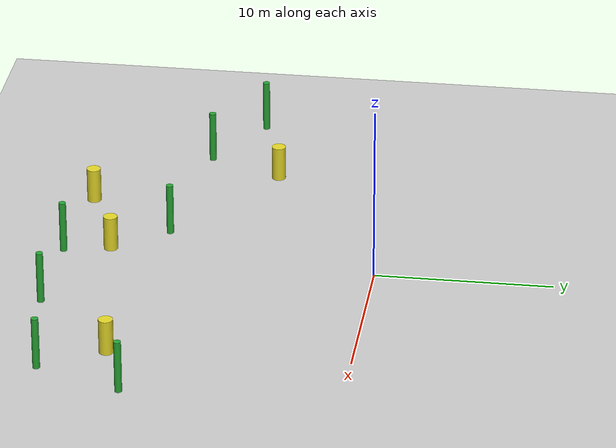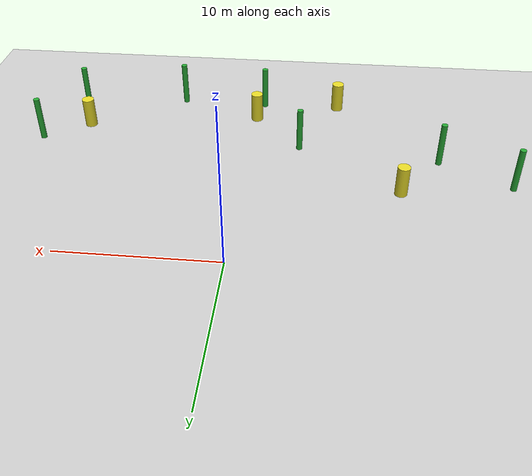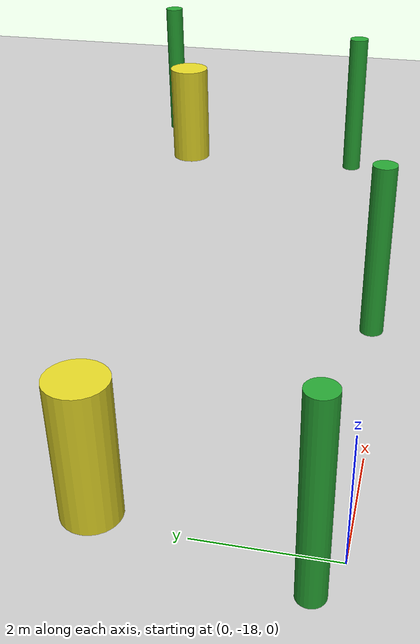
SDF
<sdf version="1.7">
 <world name="default">
  <model name="ground_plane">
   <static>1</static>
   <link name="link">
    <collision name="collision">
     <geometry><plane><normal>0 0 1</normal><size>100 100</size></plane></geometry>
     <surface>
      <contact><collide_bitmask>65535</collide_bitmask></contact>
      <friction><ode><mu>100</mu><mu2>50</mu2></ode></friction>
     </surface>
    </collision>
    <visual name="visual">
     <cast_shadows>0</cast_shadows>
     <geometry><plane><normal>0 0 1</normal><size>100 100</size></plane></geometry>
     <material>
      <script><uri>file://media/materials/scripts/gazebo.material</uri><name>Gazebo/Grey</name></script>
     </material>
    </visual>
   </link>
  </model>
  <model name="cylinder4_clone_3">
   <pose>-5.90099 -14.8686 0 0 -0 0</pose>
   <frame name="obs_cylinder_large::__model__" attached_to="obs_cylinder_large::link">
    <pose relative_to="__model__">-0.02147 -2 1.5 0 -0 0</pose>
   </frame>
   <link name="obs_cylinder_large::link">
    <inertial><mass>1</mass></inertial>
    <pose relative_to="obs_cylinder_large::__model__">0 0 0 0 -0 0</pose>
    <visual name="visual">
     <geometry><cylinder><radius>0.4</radius><length>2</length></cylinder></geometry>
     <material>
      <script><name>Gazebo/Yellow</name><uri>file://media/materials/scripts/gazebo.material</uri></script>
     </material>
    </visual>
    <collision name="collision">
     <geometry><cylinder><radius>0.25</radius><length>2</length></cylinder></geometry>
    </collision>
   </link>
   <static>1</static>
  </model>
  <model name="cylinder4_clone_5">
   <pose>-14.066 -10.7554 0 0 -0 0</pose>
   <frame name="obs_cylinder_large::__model__" attached_to="obs_cylinder_large::link">
    <pose relative_to="__model__">3.98158 3.97316 1.5 0 -0 0</pose>
   </frame>
   <link name="obs_cylinder_large::link">
    <inertial><mass>1</mass></inertial>
    <pose relative_to="obs_cylinder_large::__model__">0 0 0 0 -0 0</pose>
    <visual name="visual">
     <geometry><cylinder><radius>0.4</radius><length>2</length></cylinder></geometry>
     <material>
      <script><name>Gazebo/Yellow</name><uri>file://media/materials/scripts/gazebo.material</uri></script>
     </material>
    </visual>
    <collision name="collision">
     <geometry><cylinder><radius>0.25</radius><length>2</length></cylinder></geometry>
    </collision>
   </link>
   <static>1</static>
  </model>
  <model name="cylinder3_clone">
   <pose>5.25573 -13.1614 0 0 -0 0</pose>
   <frame name="obs_cylinder_large::__model__" attached_to="obs_cylinder_large::link">
    <pose relative_to="__model__">6.07287 0.13588 1.5 0 -0 0</pose>
   </frame>
   <link name="obs_cylinder_large::link">
    <inertial><mass>1</mass></inertial>
    <pose relative_to="obs_cylinder_large::__model__">0 0 0 0 -0 0</pose>
    <visual name="visual">
     <geometry><cylinder><radius>0.4</radius><length>2</length></cylinder></geometry>
     <material>
      <script><name>Gazebo/Yellow</name><uri>file://media/materials/scripts/gazebo.material</uri></script>
     </material>
    </visual>
    <collision name="collision">
     <geometry><cylinder><radius>0.25</radius><length>2</length></cylinder></geometry>
    </collision>
   </link>
   <static>1</static>
  </model>
  <model name="cylinder3_clone_0">
   <pose>-4.43676 -10.8165 0 0 -0 0</pose>
   <frame name="obs_cylinder_large::__model__" attached_to="obs_cylinder_large::link">
    <pose relative_to="__model__">4.15022 -4.06495 1.5 0 -0 0</pose>
   </frame>
   <link name="obs_cylinder_large::link">
    <inertial><mass>1</mass></inertial>
    <pose relative_to="obs_cylinder_large::__model__">0 0 0 0 -0 0</pose>
    <visual name="visual">
     <geometry><cylinder><radius>0.4</radius><length>2</length></cylinder></geometry>
     <material>
      <script><name>Gazebo/Yellow</name><uri>file://media/materials/scripts/gazebo.material</uri></script>
     </material>
    </visual>
    <collision name="collision">
     <geometry><cylinder><radius>0.25</radius><length>2</length></cylinder></geometry>
    </collision>
   </link>
   <static>1</static>
  </model>
  <model name="cylinder3_clone_11">
   <pose>-2.50895 -6.24666 0 0 -0 0</pose>
   <frame name="obs_cylinder_small::__model__" attached_to="obs_cylinder_small::link">
    <pose relative_to="__model__">-0.97445 -5.80554 1.5 0 -0 0</pose>
   </frame>
   <link name="obs_cylinder_small::link">
    <inertial><mass>1</mass></inertial>
    <pose relative_to="obs_cylinder_small::__model__">0 0 0 0 -0 0</pose>
    <visual name="visual">
     <geometry><cylinder><radius>0.2</radius><length>3</length></cylinder></geometry>
     <material>
      <script><name>Gazebo/Green</name><uri>file://media/materials/scripts/gazebo.material</uri></script>
     </material>
    </visual>
    <collision name="collision">
     <geometry><cylinder><radius>0.25</radius><length>3</length></cylinder></geometry>
    </collision>
   </link>
   <static>1</static>
  </model>
  <model name="cylinder3_clone_4">
   <pose>-13.0228 -13.1395 0 0 -0 0</pose>
   <frame name="obs_cylinder_small::__model__" attached_to="obs_cylinder_small::link">
    <pose relative_to="__model__">0.17873 2.05724 1.5 0 -0 0</pose>
   </frame>
   <link name="obs_cylinder_small::link">
    <inertial><mass>1</mass></inertial>
    <pose relative_to="obs_cylinder_small::__model__">0 0 0 0 -0 0</pose>
    <visual name="visual">
     <geometry><cylinder><radius>0.2</radius><length>3</length></cylinder></geometry>
     <material>
      <script><name>Gazebo/Green</name><uri>file://media/materials/scripts/gazebo.material</uri></script>
     </material>
    </visual>
    <collision name="collision">
     <geometry><cylinder><radius>0.25</radius><length>3</length></cylinder></geometry>
    </collision>
   </link>
   <static>1</static>
  </model>
  <model name="cylinder3_clone_6">
   <pose>-13.3371 -9.62586 0 0 -0 0</pose>
   <frame name="obs_cylinder_small::__model__" attached_to="obs_cylinder_small::link">
    <pose relative_to="__model__">-3.98585 1.05791 1.5 0 -0 0</pose>
   </frame>
   <link name="obs_cylinder_small::link">
    <inertial><mass>1</mass></inertial>
    <pose relative_to="obs_cylinder_small::__model__">0 0 0 0 -0 0</pose>
    <visual name="visual">
     <geometry><cylinder><radius>0.2</radius><length>3</length></cylinder></geometry>
     <material>
      <script><name>Gazebo/Green</name><uri>file://media/materials/scripts/gazebo.material</uri></script>
     </material>
    </visual>
    <collision name="collision">
     <geometry><cylinder><radius>0.25</radius><length>3</length></cylinder></geometry>
    </collision>
   </link>
   <static>1</static>
  </model>
  <model name="cylinder4_clone_11_clone_14">
   <frame name="obs_cylinder_small::__model__" attached_to="obs_cylinder_small::link">
    <pose relative_to="__model__">9.0654 0.083267 1.5 0 -0 0</pose>
   </frame>
   <link name="obs_cylinder_small::link">
    <inertial><mass>1</mass></inertial>
    <pose relative_to="obs_cylinder_small::__model__">0 0 0 0 -0 0</pose>
    <visual name="visual">
     <geometry><cylinder><radius>0.2</radius><length>3</length></cylinder></geometry>
     <material>
      <script><name>Gazebo/Green</name><uri>file://media/materials/scripts/gazebo.material</uri></script>
     </material>
    </visual>
    <collision name="collision">
     <geometry><cylinder><radius>0.25</radius><length>3</length></cylinder></geometry>
    </collision>
   </link>
   <static>1</static>
   <pose>-9.64946 -17.7328 0 0 -0 0</pose>
  </model>
  <model name="cylinder4_clone_11_clone_15">
   <frame name="obs_cylinder_small::__model__" attached_to="obs_cylinder_small::link">
    <pose relative_to="__model__">9.0654 0.083267 1.5 0 -0 0</pose>
   </frame>
   <link name="obs_cylinder_small::link">
    <inertial><mass>1</mass></inertial>
    <pose relative_to="obs_cylinder_small::__model__">0 0 0 0 -0 0</pose>
    <visual name="visual">
     <geometry><cylinder><radius>0.2</radius><length>3</length></cylinder></geometry>
     <material>
      <script><name>Gazebo/Green</name><uri>file://media/materials/scripts/gazebo.material</uri></script>
     </material>
    </visual>
    <collision name="collision">
     <geometry><cylinder><radius>0.25</radius><length>3</length></cylinder></geometry>
    </collision>
   </link>
   <static>1</static>
   <pose>-3.66262 -17.8573 0 0 -0 0</pose>
  </model>
  <model name="cylinder4_clone_11_clone_16">
   <frame name="obs_cylinder_small::__model__" attached_to="obs_cylinder_small::link">
    <pose relative_to="__model__">9.0654 0.083267 1.5 0 -0 0</pose>
   </frame>
   <link name="obs_cylinder_small::link">
    <inertial><mass>1</mass></inertial>
    <pose relative_to="obs_cylinder_small::__model__">0 0 0 0 -0 0</pose>
    <visual name="visual">
     <geometry><cylinder><radius>0.2</radius><length>3</length></cylinder></geometry>
     <material>
      <script><name>Gazebo/Green</name><uri>file://media/materials/scripts/gazebo.material</uri></script>
     </material>
    </visual>
    <collision name="collision">
     <geometry><cylinder><radius>0.25</radius><length>3</length></cylinder></geometry>
    </collision>
   </link>
   <static>1</static>
   <pose>3.543 -16.6758 0 0 -0 0</pose>
  </model>
  <model name="cylinder4_clone_11_clone_17">
   <frame name="obs_cylinder_small::__model__" attached_to="obs_cylinder_small::link">
    <pose relative_to="__model__">9.0654 0.083267 1.5 0 -0 0</pose>
   </frame>
   <link name="obs_cylinder_small::link">
    <inertial><mass>1</mass></inertial>
    <pose relative_to="obs_cylinder_small::__model__">0 0 0 0 -0 0</pose>
    <visual name="visual">
     <geometry><cylinder><radius>0.2</radius><length>3</length></cylinder></geometry>
     <material>
      <script><name>Gazebo/Green</name><uri>file://media/materials/scripts/gazebo.material</uri></script>
     </material>
    </visual>
    <collision name="collision">
     <geometry><cylinder><radius>0.25</radius><length>3</length></cylinder></geometry>
    </collision>
   </link>
   <static>1</static>
   <pose>5.4148 -11.8965 0 0 -0 0</pose>
  </model>
 </world>
</sdf>
